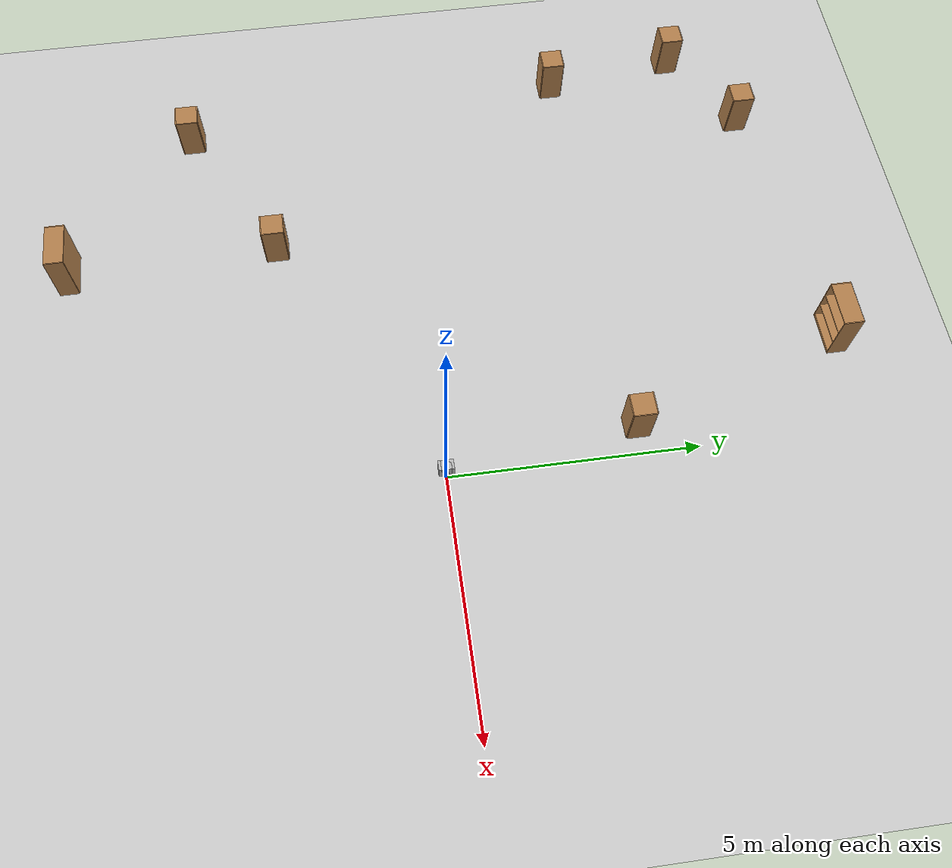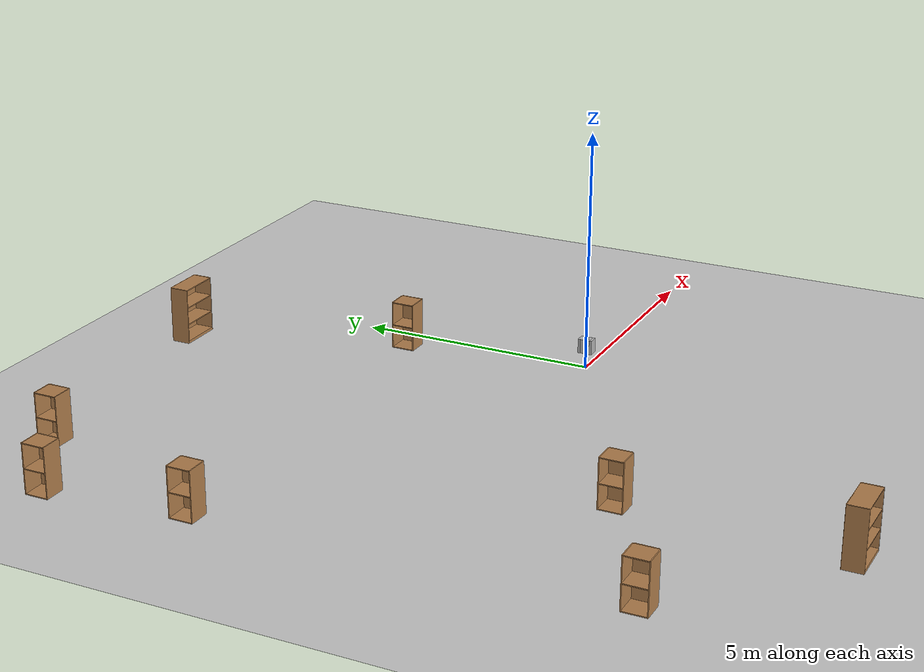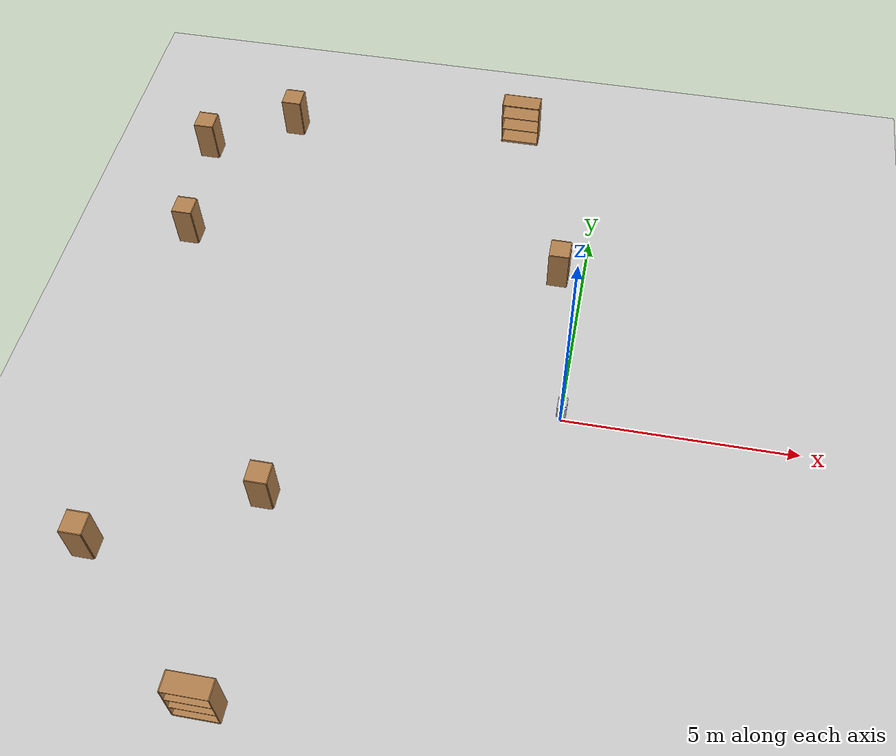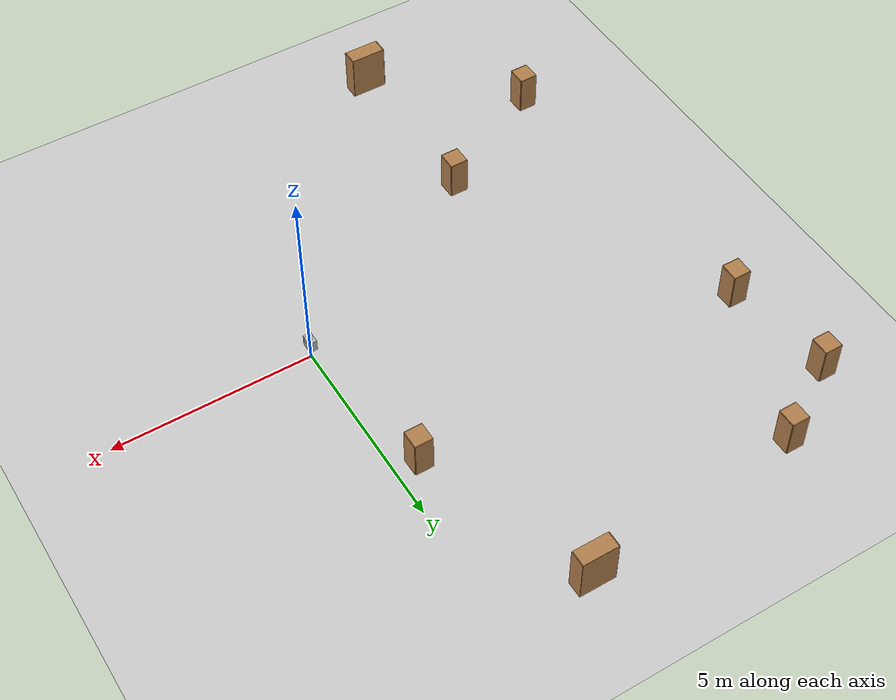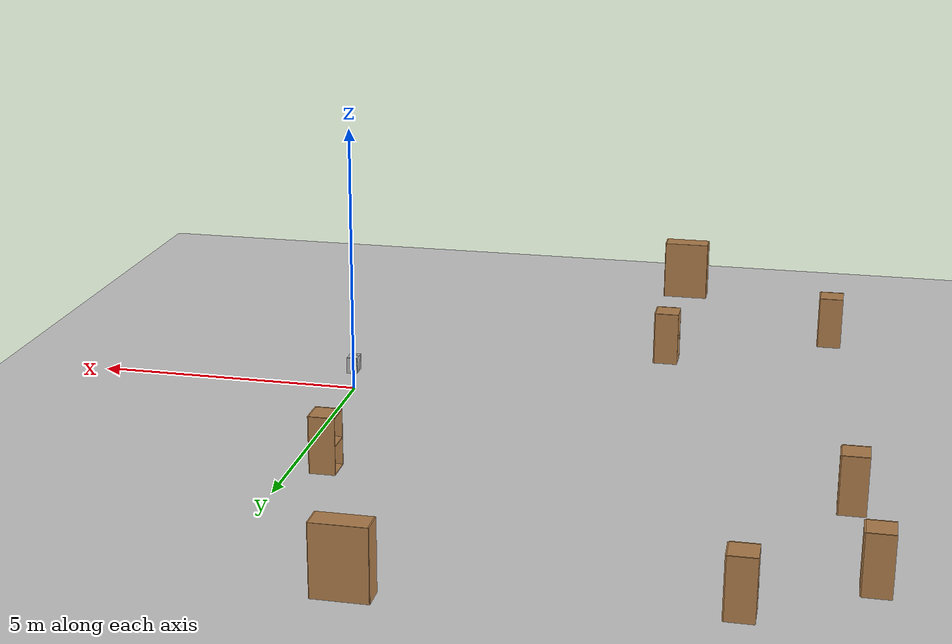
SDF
<sdf version="1.6">
 <world name="default">
  <model name="animated_box">
   <pose>0 0 0.5 0 0 0</pose>
   <link name="link">
    <collision name="animated_box_collision"><geometry><box><size>0.2 0.3 0.3</size></box></geometry></collision>
    <visual name="visual"><geometry><box><size>0.2 0.3 0.3</size></box></geometry></visual>
    <inertial>
     <inertia><ixx>1</ixx><ixy>0</ixy><ixz>0</ixz><iyy>1</iyy><iyz>0</iyz><izz>1</izz></inertia>
     <mass>1</mass>
    </inertial>
    <gravity>0</gravity>
   </link>
   <plugin name="push_animate" filename="libbox_forward_movement6.so"/>
  </model>
  <model name="animated_box2">
   <pose>0 0 0.5 0 0 0</pose>
   <link name="link">
    <collision name="animated_box_collision2"><geometry><box><size>0.2 0.2 0.3</size></box></geometry></collision>
    <visual name="visual"><geometry><box><size>0.2 0.2 0.3</size></box></geometry></visual>
    <inertial>
     <inertia><ixx>1</ixx><ixy>0</ixy><ixz>0</ixz><iyy>1</iyy><iyz>0</iyz><izz>1</izz></inertia>
     <mass>1</mass>
    </inertial>
    <gravity>0</gravity>
   </link>
   <plugin name="push_animate2" filename="libbox_clockwise_movement.so"/>
  </model>
  <model name="animated_box3">
   <pose>0 0 0.5 0 0 0</pose>
   <link name="link">
    <collision name="animated_box_collision3"><geometry><box><size>0.2 0.2 0.3</size></box></geometry></collision>
    <visual name="visual"><geometry><box><size>0.2 0.2 0.3</size></box></geometry></visual>
    <inertial>
     <inertia><ixx>1</ixx><ixy>0</ixy><ixz>0</ixz><iyy>1</iyy><iyz>0</iyz><izz>1</izz></inertia>
     <mass>1</mass>
    </inertial>
    <gravity>0</gravity>
   </link>
   <plugin name="push_animate3" filename="libbox_clockwise_movement3.so"/>
  </model>
  <model name="animated_box4">
   <pose>0 0 0.5 0 0 0</pose>
   <link name="link">
    <collision name="animated_box_collision4"><geometry><box><size>0.2 0.3 0.3</size></box></geometry></collision>
    <visual name="visual"><geometry><box><size>0.2 0.3 0.3</size></box></geometry></visual>
    <inertial>
     <inertia><ixx>1</ixx><ixy>0</ixy><ixz>0</ixz><iyy>1</iyy><iyz>0</iyz><izz>1</izz></inertia>
     <mass>1</mass>
    </inertial>
    <gravity>0</gravity>
   </link>
   <plugin name="push_animate4" filename="libbox_forward_movement8.so"/>
  </model>
  <model name="ground_plane">
   <static>1</static>
   <link name="link">
    <collision name="collision">
     <geometry><plane><normal>0 0 1</normal><size>100 100</size></plane></geometry>
     <surface><friction><ode><mu>100</mu><mu2>50</mu2></ode></friction></surface>
    </collision>
    <visual name="visual">
     <cast_shadows>0</cast_shadows>
     <geometry><plane><normal>0 0 1</normal><size>100 100</size></plane></geometry>
     <material>
      <script><uri>file://media/materials/scripts/gazebo.material</uri><name>Gazebo/Grey</name></script>
     </material>
    </visual>
   </link>
  </model>
  <model name="cabinet">
   <static>1</static>
   <link name="cabinet_bottom_plate">
    <inertial>
     <pose>0 0 -1 0 -0 0</pose>
     <inertia><ixx>2.05</ixx><ixy>0</ixy><ixz>0</ixz><iyy>2.05</iyy><iyz>0</iyz><izz>2.05</izz></inertia>
     <mass>25</mass>
    </inertial>
    <collision name="cabinet_bottom_plate_geom">
     <pose>0 0 0.01 0 -0 0</pose>
     <geometry><box><size>0.45 0.45 0.02</size></box></geometry>
    </collision>
    <visual name="cabinet_bottom_plate_geom_visual">
     <pose>0 0 0.01 0 -0 0</pose>
     <geometry><box><size>0.45 0.45 0.02</size></box></geometry>
     <material>
      <script><uri>file://media/materials/scripts/gazebo.material</uri><name>Gazebo/Wood</name></script>
     </material>
    </visual>
    <collision name="cabinet_bottom_plate_geom_cabinet_back_plate">
     <pose>0.235 0 0.51 0 -0 0</pose>
     <geometry><box><size>0.02 0.45 1.02</size></box></geometry>
    </collision>
    <visual name="cabinet_bottom_plate_geom_cabinet_back_plate_visual">
     <pose>0.235 0 0.51 0 -0 0</pose>
     <geometry><box><size>0.02 0.45 1.02</size></box></geometry>
     <material>
      <script><uri>file://media/materials/scripts/gazebo.material</uri><name>Gazebo/Wood</name></script>
     </material>
    </visual>
    <collision name="cabinet_bottom_plate_geom_cabinet_left_plate">
     <pose>0 0.235 0.51 0 -0 0</pose>
     <geometry><box><size>0.45 0.02 1.02</size></box></geometry>
    </collision>
    <visual name="cabinet_bottom_plate_geom_cabinet_left_plate_visual">
     <pose>0 0.235 0.51 0 -0 0</pose>
     <geometry><box><size>0.45 0.02 1.02</size></box></geometry>
     <material>
      <script><uri>file://media/materials/scripts/gazebo.material</uri><name>Gazebo/Wood</name></script>
     </material>
    </visual>
    <collision name="cabinet_bottom_plate_geom_cabinet_middle_plate">
     <pose>0 0 0.51 0 -0 0</pose>
     <geometry><box><size>0.45 0.45 0.02</size></box></geometry>
    </collision>
    <visual name="cabinet_bottom_plate_geom_cabinet_middle_plate_visual">
     <pose>0 0 0.51 0 -0 0</pose>
     <geometry><box><size>0.45 0.45 0.02</size></box></geometry>
     <material>
      <script><uri>file://media/materials/scripts/gazebo.material</uri><name>Gazebo/Wood</name></script>
     </material>
    </visual>
    <collision name="cabinet_bottom_plate_geom_cabinet_right_plate">
     <pose>0 -0.235 0.51 0 -0 0</pose>
     <geometry><box><size>0.45 0.02 1.02</size></box></geometry>
    </collision>
    <visual name="cabinet_bottom_plate_geom_cabinet_right_plate_visual">
     <pose>0 -0.235 0.51 0 -0 0</pose>
     <geometry><box><size>0.45 0.02 1.02</size></box></geometry>
     <material>
      <script><uri>file://media/materials/scripts/gazebo.material</uri><name>Gazebo/Wood</name></script>
     </material>
    </visual>
    <collision name="cabinet_bottom_plate_geom_cabinet_top_plate">
     <pose>0 0 1.01 0 -0 0</pose>
     <geometry><box><size>0.45 0.45 0.02</size></box></geometry>
    </collision>
    <visual name="cabinet_bottom_plate_geom_cabinet_top_plate_visual">
     <pose>0 0 1.01 0 -0 0</pose>
     <geometry><box><size>0.45 0.45 0.02</size></box></geometry>
     <material>
      <script><uri>file://media/materials/scripts/gazebo.material</uri><name>Gazebo/Wood</name></script>
     </material>
    </visual>
   </link>
   <pose>-7.78312 7.62093 0 0 -0 0</pose>
  </model>
  <model name="cabinet_0">
   <static>1</static>
   <link name="cabinet_bottom_plate">
    <inertial>
     <pose>0 0 -1 0 -0 0</pose>
     <inertia><ixx>2.05</ixx><ixy>0</ixy><ixz>0</ixz><iyy>2.05</iyy><iyz>0</iyz><izz>2.05</izz></inertia>
     <mass>25</mass>
    </inertial>
    <collision name="cabinet_bottom_plate_geom">
     <pose>0 0 0.01 0 -0 0</pose>
     <geometry><box><size>0.45 0.45 0.02</size></box></geometry>
    </collision>
    <visual name="cabinet_bottom_plate_geom_visual">
     <pose>0 0 0.01 0 -0 0</pose>
     <geometry><box><size>0.45 0.45 0.02</size></box></geometry>
     <material>
      <script><uri>file://media/materials/scripts/gazebo.material</uri><name>Gazebo/Wood</name></script>
     </material>
    </visual>
    <collision name="cabinet_bottom_plate_geom_cabinet_back_plate">
     <pose>0.235 0 0.51 0 -0 0</pose>
     <geometry><box><size>0.02 0.45 1.02</size></box></geometry>
    </collision>
    <visual name="cabinet_bottom_plate_geom_cabinet_back_plate_visual">
     <pose>0.235 0 0.51 0 -0 0</pose>
     <geometry><box><size>0.02 0.45 1.02</size></box></geometry>
     <material>
      <script><uri>file://media/materials/scripts/gazebo.material</uri><name>Gazebo/Wood</name></script>
     </material>
    </visual>
    <collision name="cabinet_bottom_plate_geom_cabinet_left_plate">
     <pose>0 0.235 0.51 0 -0 0</pose>
     <geometry><box><size>0.45 0.02 1.02</size></box></geometry>
    </collision>
    <visual name="cabinet_bottom_plate_geom_cabinet_left_plate_visual">
     <pose>0 0.235 0.51 0 -0 0</pose>
     <geometry><box><size>0.45 0.02 1.02</size></box></geometry>
     <material>
      <script><uri>file://media/materials/scripts/gazebo.material</uri><name>Gazebo/Wood</name></script>
     </material>
    </visual>
    <collision name="cabinet_bottom_plate_geom_cabinet_middle_plate">
     <pose>0 0 0.51 0 -0 0</pose>
     <geometry><box><size>0.45 0.45 0.02</size></box></geometry>
    </collision>
    <visual name="cabinet_bottom_plate_geom_cabinet_middle_plate_visual">
     <pose>0 0 0.51 0 -0 0</pose>
     <geometry><box><size>0.45 0.45 0.02</size></box></geometry>
     <material>
      <script><uri>file://media/materials/scripts/gazebo.material</uri><name>Gazebo/Wood</name></script>
     </material>
    </visual>
    <collision name="cabinet_bottom_plate_geom_cabinet_right_plate">
     <pose>0 -0.235 0.51 0 -0 0</pose>
     <geometry><box><size>0.45 0.02 1.02</size></box></geometry>
    </collision>
    <visual name="cabinet_bottom_plate_geom_cabinet_right_plate_visual">
     <pose>0 -0.235 0.51 0 -0 0</pose>
     <geometry><box><size>0.45 0.02 1.02</size></box></geometry>
     <material>
      <script><uri>file://media/materials/scripts/gazebo.material</uri><name>Gazebo/Wood</name></script>
     </material>
    </visual>
    <collision name="cabinet_bottom_plate_geom_cabinet_top_plate">
     <pose>0 0 1.01 0 -0 0</pose>
     <geometry><box><size>0.45 0.45 0.02</size></box></geometry>
    </collision>
    <visual name="cabinet_bottom_plate_geom_cabinet_top_plate_visual">
     <pose>0 0 1.01 0 -0 0</pose>
     <geometry><box><size>0.45 0.45 0.02</size></box></geometry>
     <material>
      <script><uri>file://media/materials/scripts/gazebo.material</uri><name>Gazebo/Wood</name></script>
     </material>
    </visual>
   </link>
   <pose>-0.585498 3.84273 0 0 -0 0</pose>
  </model>
  <model name="cabinet_1">
   <static>1</static>
   <link name="cabinet_bottom_plate">
    <inertial>
     <pose>0 0 -1 0 -0 0</pose>
     <inertia><ixx>2.05</ixx><ixy>0</ixy><ixz>0</ixz><iyy>2.05</iyy><iyz>0</iyz><izz>2.05</izz></inertia>
     <mass>25</mass>
    </inertial>
    <collision name="cabinet_bottom_plate_geom">
     <pose>0 0 0.01 0 -0 0</pose>
     <geometry><box><size>0.45 0.45 0.02</size></box></geometry>
    </collision>
    <visual name="cabinet_bottom_plate_geom_visual">
     <pose>0 0 0.01 0 -0 0</pose>
     <geometry><box><size>0.45 0.45 0.02</size></box></geometry>
     <material>
      <script><uri>file://media/materials/scripts/gazebo.material</uri><name>Gazebo/Wood</name></script>
     </material>
    </visual>
    <collision name="cabinet_bottom_plate_geom_cabinet_back_plate">
     <pose>0.235 0 0.51 0 -0 0</pose>
     <geometry><box><size>0.02 0.45 1.02</size></box></geometry>
    </collision>
    <visual name="cabinet_bottom_plate_geom_cabinet_back_plate_visual">
     <pose>0.235 0 0.51 0 -0 0</pose>
     <geometry><box><size>0.02 0.45 1.02</size></box></geometry>
     <material>
      <script><uri>file://media/materials/scripts/gazebo.material</uri><name>Gazebo/Wood</name></script>
     </material>
    </visual>
    <collision name="cabinet_bottom_plate_geom_cabinet_left_plate">
     <pose>0 0.235 0.51 0 -0 0</pose>
     <geometry><box><size>0.45 0.02 1.02</size></box></geometry>
    </collision>
    <visual name="cabinet_bottom_plate_geom_cabinet_left_plate_visual">
     <pose>0 0.235 0.51 0 -0 0</pose>
     <geometry><box><size>0.45 0.02 1.02</size></box></geometry>
     <material>
      <script><uri>file://media/materials/scripts/gazebo.material</uri><name>Gazebo/Wood</name></script>
     </material>
    </visual>
    <collision name="cabinet_bottom_plate_geom_cabinet_middle_plate">
     <pose>0 0 0.51 0 -0 0</pose>
     <geometry><box><size>0.45 0.45 0.02</size></box></geometry>
    </collision>
    <visual name="cabinet_bottom_plate_geom_cabinet_middle_plate_visual">
     <pose>0 0 0.51 0 -0 0</pose>
     <geometry><box><size>0.45 0.45 0.02</size></box></geometry>
     <material>
      <script><uri>file://media/materials/scripts/gazebo.material</uri><name>Gazebo/Wood</name></script>
     </material>
    </visual>
    <collision name="cabinet_bottom_plate_geom_cabinet_right_plate">
     <pose>0 -0.235 0.51 0 -0 0</pose>
     <geometry><box><size>0.45 0.02 1.02</size></box></geometry>
    </collision>
    <visual name="cabinet_bottom_plate_geom_cabinet_right_plate_visual">
     <pose>0 -0.235 0.51 0 -0 0</pose>
     <geometry><box><size>0.45 0.02 1.02</size></box></geometry>
     <material>
      <script><uri>file://media/materials/scripts/gazebo.material</uri><name>Gazebo/Wood</name></script>
     </material>
    </visual>
    <collision name="cabinet_bottom_plate_geom_cabinet_top_plate">
     <pose>0 0 1.01 0 -0 0</pose>
     <geometry><box><size>0.45 0.45 0.02</size></box></geometry>
    </collision>
    <visual name="cabinet_bottom_plate_geom_cabinet_top_plate_visual">
     <pose>0 0 1.01 0 -0 0</pose>
     <geometry><box><size>0.45 0.45 0.02</size></box></geometry>
     <material>
      <script><uri>file://media/materials/scripts/gazebo.material</uri><name>Gazebo/Wood</name></script>
     </material>
    </visual>
   </link>
   <pose>-5.61767 -2.8837 0 0 -0 0</pose>
  </model>
  <model name="cabinet_4">
   <static>1</static>
   <link name="cabinet_bottom_plate">
    <inertial>
     <pose>0 0 -1 0 -0 0</pose>
     <inertia><ixx>2.05</ixx><ixy>0</ixy><ixz>0</ixz><iyy>2.05</iyy><iyz>0</iyz><izz>2.05</izz></inertia>
     <mass>25</mass>
    </inertial>
    <collision name="cabinet_bottom_plate_geom">
     <pose>0 0 0.01 0 -0 0</pose>
     <geometry><box><size>0.45 0.45 0.02</size></box></geometry>
    </collision>
    <visual name="cabinet_bottom_plate_geom_visual">
     <pose>0 0 0.01 0 -0 0</pose>
     <geometry><box><size>0.45 0.45 0.02</size></box></geometry>
     <material>
      <script><uri>file://media/materials/scripts/gazebo.material</uri><name>Gazebo/Wood</name></script>
     </material>
    </visual>
    <collision name="cabinet_bottom_plate_geom_cabinet_back_plate">
     <pose>0.235 0 0.51 0 -0 0</pose>
     <geometry><box><size>0.02 0.45 1.02</size></box></geometry>
    </collision>
    <visual name="cabinet_bottom_plate_geom_cabinet_back_plate_visual">
     <pose>0.235 0 0.51 0 -0 0</pose>
     <geometry><box><size>0.02 0.45 1.02</size></box></geometry>
     <material>
      <script><uri>file://media/materials/scripts/gazebo.material</uri><name>Gazebo/Wood</name></script>
     </material>
    </visual>
    <collision name="cabinet_bottom_plate_geom_cabinet_left_plate">
     <pose>0 0.235 0.51 0 -0 0</pose>
     <geometry><box><size>0.45 0.02 1.02</size></box></geometry>
    </collision>
    <visual name="cabinet_bottom_plate_geom_cabinet_left_plate_visual">
     <pose>0 0.235 0.51 0 -0 0</pose>
     <geometry><box><size>0.45 0.02 1.02</size></box></geometry>
     <material>
      <script><uri>file://media/materials/scripts/gazebo.material</uri><name>Gazebo/Wood</name></script>
     </material>
    </visual>
    <collision name="cabinet_bottom_plate_geom_cabinet_middle_plate">
     <pose>0 0 0.51 0 -0 0</pose>
     <geometry><box><size>0.45 0.45 0.02</size></box></geometry>
    </collision>
    <visual name="cabinet_bottom_plate_geom_cabinet_middle_plate_visual">
     <pose>0 0 0.51 0 -0 0</pose>
     <geometry><box><size>0.45 0.45 0.02</size></box></geometry>
     <material>
      <script><uri>file://media/materials/scripts/gazebo.material</uri><name>Gazebo/Wood</name></script>
     </material>
    </visual>
    <collision name="cabinet_bottom_plate_geom_cabinet_right_plate">
     <pose>0 -0.235 0.51 0 -0 0</pose>
     <geometry><box><size>0.45 0.02 1.02</size></box></geometry>
    </collision>
    <visual name="cabinet_bottom_plate_geom_cabinet_right_plate_visual">
     <pose>0 -0.235 0.51 0 -0 0</pose>
     <geometry><box><size>0.45 0.02 1.02</size></box></geometry>
     <material>
      <script><uri>file://media/materials/scripts/gazebo.material</uri><name>Gazebo/Wood</name></script>
     </material>
    </visual>
    <collision name="cabinet_bottom_plate_geom_cabinet_top_plate">
     <pose>0 0 1.01 0 -0 0</pose>
     <geometry><box><size>0.45 0.45 0.02</size></box></geometry>
    </collision>
    <visual name="cabinet_bottom_plate_geom_cabinet_top_plate_visual">
     <pose>0 0 1.01 0 -0 0</pose>
     <geometry><box><size>0.45 0.45 0.02</size></box></geometry>
     <material>
      <script><uri>file://media/materials/scripts/gazebo.material</uri><name>Gazebo/Wood</name></script>
     </material>
    </visual>
   </link>
   <pose>-9.28942 3.6387 0 0 -0 0</pose>
  </model>
  <model name="cabinet_5">
   <static>1</static>
   <link name="cabinet_bottom_plate">
    <inertial>
     <pose>0 0 -1 0 -0 0</pose>
     <inertia><ixx>2.05</ixx><ixy>0</ixy><ixz>0</ixz><iyy>2.05</iyy><iyz>0</iyz><izz>2.05</izz></inertia>
     <mass>25</mass>
    </inertial>
    <collision name="cabinet_bottom_plate_geom">
     <pose>0 0 0.01 0 -0 0</pose>
     <geometry><box><size>0.45 0.45 0.02</size></box></geometry>
    </collision>
    <visual name="cabinet_bottom_plate_geom_visual">
     <pose>0 0 0.01 0 -0 0</pose>
     <geometry><box><size>0.45 0.45 0.02</size></box></geometry>
     <material>
      <script><uri>file://media/materials/scripts/gazebo.material</uri><name>Gazebo/Wood</name></script>
     </material>
    </visual>
    <collision name="cabinet_bottom_plate_geom_cabinet_back_plate">
     <pose>0.235 0 0.51 0 -0 0</pose>
     <geometry><box><size>0.02 0.45 1.02</size></box></geometry>
    </collision>
    <visual name="cabinet_bottom_plate_geom_cabinet_back_plate_visual">
     <pose>0.235 0 0.51 0 -0 0</pose>
     <geometry><box><size>0.02 0.45 1.02</size></box></geometry>
     <material>
      <script><uri>file://media/materials/scripts/gazebo.material</uri><name>Gazebo/Wood</name></script>
     </material>
    </visual>
    <collision name="cabinet_bottom_plate_geom_cabinet_left_plate">
     <pose>0 0.235 0.51 0 -0 0</pose>
     <geometry><box><size>0.45 0.02 1.02</size></box></geometry>
    </collision>
    <visual name="cabinet_bottom_plate_geom_cabinet_left_plate_visual">
     <pose>0 0.235 0.51 0 -0 0</pose>
     <geometry><box><size>0.45 0.02 1.02</size></box></geometry>
     <material>
      <script><uri>file://media/materials/scripts/gazebo.material</uri><name>Gazebo/Wood</name></script>
     </material>
    </visual>
    <collision name="cabinet_bottom_plate_geom_cabinet_middle_plate">
     <pose>0 0 0.51 0 -0 0</pose>
     <geometry><box><size>0.45 0.45 0.02</size></box></geometry>
    </collision>
    <visual name="cabinet_bottom_plate_geom_cabinet_middle_plate_visual">
     <pose>0 0 0.51 0 -0 0</pose>
     <geometry><box><size>0.45 0.45 0.02</size></box></geometry>
     <material>
      <script><uri>file://media/materials/scripts/gazebo.material</uri><name>Gazebo/Wood</name></script>
     </material>
    </visual>
    <collision name="cabinet_bottom_plate_geom_cabinet_right_plate">
     <pose>0 -0.235 0.51 0 -0 0</pose>
     <geometry><box><size>0.45 0.02 1.02</size></box></geometry>
    </collision>
    <visual name="cabinet_bottom_plate_geom_cabinet_right_plate_visual">
     <pose>0 -0.235 0.51 0 -0 0</pose>
     <geometry><box><size>0.45 0.02 1.02</size></box></geometry>
     <material>
      <script><uri>file://media/materials/scripts/gazebo.material</uri><name>Gazebo/Wood</name></script>
     </material>
    </visual>
    <collision name="cabinet_bottom_plate_geom_cabinet_top_plate">
     <pose>0 0 1.01 0 -0 0</pose>
     <geometry><box><size>0.45 0.45 0.02</size></box></geometry>
    </collision>
    <visual name="cabinet_bottom_plate_geom_cabinet_top_plate_visual">
     <pose>0 0 1.01 0 -0 0</pose>
     <geometry><box><size>0.45 0.45 0.02</size></box></geometry>
     <material>
      <script><uri>file://media/materials/scripts/gazebo.material</uri><name>Gazebo/Wood</name></script>
     </material>
    </visual>
   </link>
   <pose>-8.74295 -4.55683 0 0 -0 0</pose>
  </model>
  <model name="bookshelf_3">
   <static>1</static>
   <link name="link">
    <inertial><mass>1</mass></inertial>
    <collision name="back">
     <pose>0 0.005 0.6 0 -0 0</pose>
     <geometry><box><size>0.9 0.01 1.2</size></box></geometry>
    </collision>
    <visual name="visual1">
     <pose>0 0.005 0.6 0 -0 0</pose>
     <geometry><box><size>0.9 0.01 1.2</size></box></geometry>
     <material>
      <script><uri>file://media/materials/scripts/gazebo.material</uri><name>Gazebo/Wood</name></script>
     </material>
    </visual>
    <collision name="left_side">
     <pose>0.45 -0.195 0.6 0 -0 0</pose>
     <geometry><box><size>0.02 0.4 1.2</size></box></geometry>
    </collision>
    <visual name="visual2">
     <pose>0.45 -0.195 0.6 0 -0 0</pose>
     <geometry><box><size>0.02 0.4 1.2</size></box></geometry>
     <material>
      <script><uri>file://media/materials/scripts/gazebo.material</uri><name>Gazebo/Wood</name></script>
     </material>
    </visual>
    <collision name="right_side">
     <pose>-0.45 -0.195 0.6 0 -0 0</pose>
     <geometry><box><size>0.02 0.4 1.2</size></box></geometry>
    </collision>
    <visual name="visual3">
     <pose>-0.45 -0.195 0.6 0 -0 0</pose>
     <geometry><box><size>0.02 0.4 1.2</size></box></geometry>
     <material>
      <script><uri>file://media/materials/scripts/gazebo.material</uri><name>Gazebo/Wood</name></script>
     </material>
    </visual>
    <collision name="bottom">
     <pose>0 -0.195 0.03 0 -0 0</pose>
     <geometry><box><size>0.88 0.4 0.06</size></box></geometry>
    </collision>
    <visual name="visual4">
     <pose>0 -0.195 0.03 0 -0 0</pose>
     <geometry><box><size>0.88 0.4 0.06</size></box></geometry>
     <material>
      <script><uri>file://media/materials/scripts/gazebo.material</uri><name>Gazebo/Wood</name></script>
     </material>
    </visual>
    <collision name="top">
     <pose>0 -0.195 1.19 0 -0 0</pose>
     <geometry><box><size>0.88 0.4 0.02</size></box></geometry>
    </collision>
    <visual name="visual5">
     <pose>0 -0.195 1.19 0 -0 0</pose>
     <geometry><box><size>0.88 0.4 0.02</size></box></geometry>
     <material>
      <script><uri>file://media/materials/scripts/gazebo.material</uri><name>Gazebo/Wood</name></script>
     </material>
    </visual>
    <collision name="low_shelf">
     <pose>0 -0.195 0.43 0 -0 0</pose>
     <geometry><box><size>0.88 0.4 0.02</size></box></geometry>
    </collision>
    <visual name="visual6">
     <pose>0 -0.195 0.43 0 -0 0</pose>
     <geometry><box><size>0.88 0.4 0.02</size></box></geometry>
     <material>
      <script><uri>file://media/materials/scripts/gazebo.material</uri><name>Gazebo/Wood</name></script>
     </material>
    </visual>
    <collision name="high_shelf">
     <pose>0 -0.195 0.8 0 -0 0</pose>
     <geometry><box><size>0.88 0.4 0.02</size></box></geometry>
    </collision>
    <visual name="visual7">
     <pose>0 -0.195 0.8 0 -0 0</pose>
     <geometry><box><size>0.88 0.4 0.02</size></box></geometry>
     <material>
      <script><uri>file://media/materials/scripts/gazebo.material</uri><name>Gazebo/Wood</name></script>
     </material>
    </visual>
   </link>
   <pose>-2.1288 8.43733 0 0 -0 0</pose>
  </model>
  <model name="bookshelf_6">
   <static>1</static>
   <link name="link">
    <inertial><mass>1</mass></inertial>
    <collision name="back">
     <pose>0 0.005 0.6 0 -0 0</pose>
     <geometry><box><size>0.9 0.01 1.2</size></box></geometry>
    </collision>
    <visual name="visual1">
     <pose>0 0.005 0.6 0 -0 0</pose>
     <geometry><box><size>0.9 0.01 1.2</size></box></geometry>
     <material>
      <script><uri>file://media/materials/scripts/gazebo.material</uri><name>Gazebo/Wood</name></script>
     </material>
    </visual>
    <collision name="left_side">
     <pose>0.45 -0.195 0.6 0 -0 0</pose>
     <geometry><box><size>0.02 0.4 1.2</size></box></geometry>
    </collision>
    <visual name="visual2">
     <pose>0.45 -0.195 0.6 0 -0 0</pose>
     <geometry><box><size>0.02 0.4 1.2</size></box></geometry>
     <material>
      <script><uri>file://media/materials/scripts/gazebo.material</uri><name>Gazebo/Wood</name></script>
     </material>
    </visual>
    <collision name="right_side">
     <pose>-0.45 -0.195 0.6 0 -0 0</pose>
     <geometry><box><size>0.02 0.4 1.2</size></box></geometry>
    </collision>
    <visual name="visual3">
     <pose>-0.45 -0.195 0.6 0 -0 0</pose>
     <geometry><box><size>0.02 0.4 1.2</size></box></geometry>
     <material>
      <script><uri>file://media/materials/scripts/gazebo.material</uri><name>Gazebo/Wood</name></script>
     </material>
    </visual>
    <collision name="bottom">
     <pose>0 -0.195 0.03 0 -0 0</pose>
     <geometry><box><size>0.88 0.4 0.06</size></box></geometry>
    </collision>
    <visual name="visual4">
     <pose>0 -0.195 0.03 0 -0 0</pose>
     <geometry><box><size>0.88 0.4 0.06</size></box></geometry>
     <material>
      <script><uri>file://media/materials/scripts/gazebo.material</uri><name>Gazebo/Wood</name></script>
     </material>
    </visual>
    <collision name="top">
     <pose>0 -0.195 1.19 0 -0 0</pose>
     <geometry><box><size>0.88 0.4 0.02</size></box></geometry>
    </collision>
    <visual name="visual5">
     <pose>0 -0.195 1.19 0 -0 0</pose>
     <geometry><box><size>0.88 0.4 0.02</size></box></geometry>
     <material>
      <script><uri>file://media/materials/scripts/gazebo.material</uri><name>Gazebo/Wood</name></script>
     </material>
    </visual>
    <collision name="low_shelf">
     <pose>0 -0.195 0.43 0 -0 0</pose>
     <geometry><box><size>0.88 0.4 0.02</size></box></geometry>
    </collision>
    <visual name="visual6">
     <pose>0 -0.195 0.43 0 -0 0</pose>
     <geometry><box><size>0.88 0.4 0.02</size></box></geometry>
     <material>
      <script><uri>file://media/materials/scripts/gazebo.material</uri><name>Gazebo/Wood</name></script>
     </material>
    </visual>
    <collision name="high_shelf">
     <pose>0 -0.195 0.8 0 -0 0</pose>
     <geometry><box><size>0.88 0.4 0.02</size></box></geometry>
    </collision>
    <visual name="visual7">
     <pose>0 -0.195 0.8 0 -0 0</pose>
     <geometry><box><size>0.88 0.4 0.02</size></box></geometry>
     <material>
      <script><uri>file://media/materials/scripts/gazebo.material</uri><name>Gazebo/Wood</name></script>
     </material>
    </visual>
   </link>
   <pose>-5.57208 -7.06733 0 0 -0 0</pose>
  </model>
  <model name="cabinet_7">
   <static>1</static>
   <link name="cabinet_bottom_plate">
    <inertial>
     <pose>0 0 -1 0 -0 0</pose>
     <inertia><ixx>2.05</ixx><ixy>0</ixy><ixz>0</ixz><iyy>2.05</iyy><iyz>0</iyz><izz>2.05</izz></inertia>
     <mass>25</mass>
    </inertial>
    <collision name="cabinet_bottom_plate_geom">
     <pose>0 0 0.01 0 -0 0</pose>
     <geometry><box><size>0.45 0.45 0.02</size></box></geometry>
    </collision>
    <visual name="cabinet_bottom_plate_geom_visual">
     <pose>0 0 0.01 0 -0 0</pose>
     <geometry><box><size>0.45 0.45 0.02</size></box></geometry>
     <material>
      <script><uri>file://media/materials/scripts/gazebo.material</uri><name>Gazebo/Wood</name></script>
     </material>
    </visual>
    <collision name="cabinet_bottom_plate_geom_cabinet_back_plate">
     <pose>0.235 0 0.51 0 -0 0</pose>
     <geometry><box><size>0.02 0.45 1.02</size></box></geometry>
    </collision>
    <visual name="cabinet_bottom_plate_geom_cabinet_back_plate_visual">
     <pose>0.235 0 0.51 0 -0 0</pose>
     <geometry><box><size>0.02 0.45 1.02</size></box></geometry>
     <material>
      <script><uri>file://media/materials/scripts/gazebo.material</uri><name>Gazebo/Wood</name></script>
     </material>
    </visual>
    <collision name="cabinet_bottom_plate_geom_cabinet_left_plate">
     <pose>0 0.235 0.51 0 -0 0</pose>
     <geometry><box><size>0.45 0.02 1.02</size></box></geometry>
    </collision>
    <visual name="cabinet_bottom_plate_geom_cabinet_left_plate_visual">
     <pose>0 0.235 0.51 0 -0 0</pose>
     <geometry><box><size>0.45 0.02 1.02</size></box></geometry>
     <material>
      <script><uri>file://media/materials/scripts/gazebo.material</uri><name>Gazebo/Wood</name></script>
     </material>
    </visual>
    <collision name="cabinet_bottom_plate_geom_cabinet_middle_plate">
     <pose>0 0 0.51 0 -0 0</pose>
     <geometry><box><size>0.45 0.45 0.02</size></box></geometry>
    </collision>
    <visual name="cabinet_bottom_plate_geom_cabinet_middle_plate_visual">
     <pose>0 0 0.51 0 -0 0</pose>
     <geometry><box><size>0.45 0.45 0.02</size></box></geometry>
     <material>
      <script><uri>file://media/materials/scripts/gazebo.material</uri><name>Gazebo/Wood</name></script>
     </material>
    </visual>
    <collision name="cabinet_bottom_plate_geom_cabinet_right_plate">
     <pose>0 -0.235 0.51 0 -0 0</pose>
     <geometry><box><size>0.45 0.02 1.02</size></box></geometry>
    </collision>
    <visual name="cabinet_bottom_plate_geom_cabinet_right_plate_visual">
     <pose>0 -0.235 0.51 0 -0 0</pose>
     <geometry><box><size>0.45 0.02 1.02</size></box></geometry>
     <material>
      <script><uri>file://media/materials/scripts/gazebo.material</uri><name>Gazebo/Wood</name></script>
     </material>
    </visual>
    <collision name="cabinet_bottom_plate_geom_cabinet_top_plate">
     <pose>0 0 1.01 0 -0 0</pose>
     <geometry><box><size>0.45 0.45 0.02</size></box></geometry>
    </collision>
    <visual name="cabinet_bottom_plate_geom_cabinet_top_plate_visual">
     <pose>0 0 1.01 0 -0 0</pose>
     <geometry><box><size>0.45 0.45 0.02</size></box></geometry>
     <material>
      <script><uri>file://media/materials/scripts/gazebo.material</uri><name>Gazebo/Wood</name></script>
     </material>
    </visual>
   </link>
   <pose>-9.66549 6.45006 0 0 -0 0</pose>
  </model>
 </world>
</sdf>
